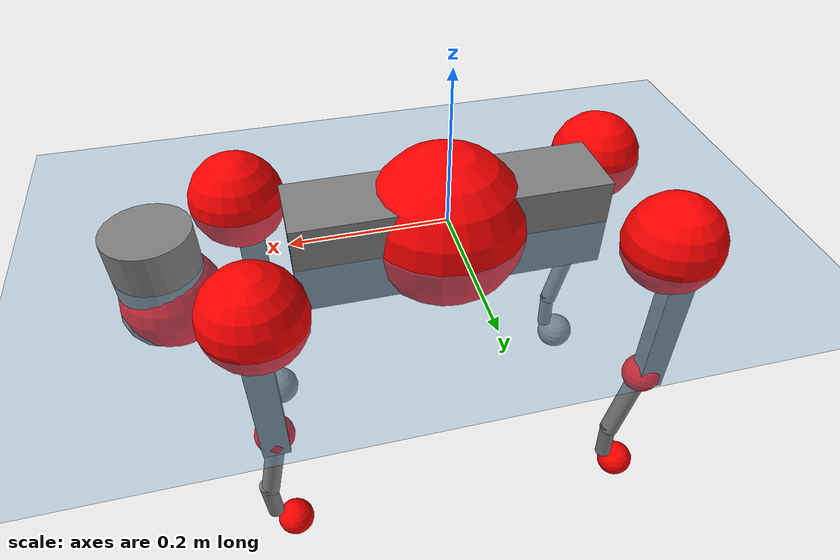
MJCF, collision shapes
<mujoco model="go2">
  <compiler angle="radian" assetdir="assets" balanceinertia="true" inertiafromgeom="false"/>

  <option timestep="0.005" density="1.2" viscosity="2e-05"/>

  <size nkey="1"/>

  <visual>
    <quality shadowsize="8192"/>
    <map shadowclip="0.5"/>
  </visual>

  <default>
    <default class="/">
      <geom contype="0" conaffinity="0" group="1" solref="-1000 -80"/>
      <site size="0.01 0.005 0.005" group="5"/>
      <general forcelimited="true" biastype="affine" gainprm="20" biasprm="0 -20 -0.5"/>
      <default class="go2">
        <joint armature="0.01" damping="0.01" frictionloss="0.2"/>
        <geom condim="1" margin="0.001"/>
        <default class="visual">
          <geom type="mesh" group="2"/>
        </default>
        <default class="collision">
          <geom group="3"/>
          <default class="foot">
            <geom size="0.022 0 0" condim="6" priority="1" friction="0.8 0.02 0.01" solimp="0.015 1 0.022"/>
          </default>
        </default>
        <default class="reward_collision_sphere">
          <geom group="5" rgba="1 0 0 1"/>
        </default>
      </default>
    </default>
  </default>

  <asset>
    <texture type="skybox" colorspace="auto" name="//unnamed_texture_0" builtin="gradient" rgb1="0.95 0.95 0.95" rgb2="0.95 0.95 0.95" width="100" height="600"/>
    <texture type="2d" colorspace="auto" name="texplane" builtin="checker" rgb1="0.345 0.575 0.748" rgb2="0.345 0.575 0.748" markrgb="1 1 1" width="512" height="512"/>
    <material name="MatPlane" class="/" texture="texplane" texuniform="true" texrepeat="2 2" specular="0.9"/>
    <material name="metal" class="/" rgba="0.9 0.95 0.95 1"/>
    <material name="black" class="/" rgba="0 0 0 1"/>
    <material name="white" class="/"/>
    <material name="gray" class="/" rgba="0.671705 0.692426 0.77427 1"/>
    <mesh name="base_0" class="/" file="base_0.obj"/>
    <mesh name="base_1" class="/" file="base_1.obj"/>
    <mesh name="base_2" class="/" file="base_2.obj"/>
    <mesh name="base_3" class="/" file="base_3.obj"/>
    <mesh name="base_4" class="/" file="base_4.obj"/>
    <mesh name="hip_0" class="/" file="hip_0.obj"/>
    <mesh name="hip_1" class="/" file="hip_1.obj"/>
    <mesh name="thigh_0" class="/" file="thigh_0.obj"/>
    <mesh name="thigh_1" class="/" file="thigh_1.obj"/>
    <mesh name="thigh_mirror_0" class="/" file="thigh_mirror_0.obj"/>
    <mesh name="thigh_mirror_1" class="/" file="thigh_mirror_1.obj"/>
    <mesh name="calf_0" class="/" file="calf_0.obj"/>
    <mesh name="calf_1" class="/" file="calf_1.obj"/>
    <mesh name="calf_mirror_0" class="/" file="calf_mirror_0.obj"/>
    <mesh name="calf_mirror_1" class="/" file="calf_mirror_1.obj"/>
    <mesh name="foot" class="/" file="foot.obj"/>
  </asset>

  <worldbody>
    <geom name="floor" class="/" size="100 100 0.125" type="plane" group="0" material="MatPlane"/>
    <light name="toplight_shadow" class="/" pos="0 0 5" dir="0.0990148 0.0990148 -0.990148" type="directional" ambient="0.04 0.04 0.04" diffuse="0.55 0.55 0.55" specular="0.12 0.12 0.12"/>
    <light name="toplight_fill" class="/" pos="0 0 5" dir="0.0990148 0.0990148 -0.990148" type="directional" castshadow="false" ambient="0.04 0.04 0.04" diffuse="0.3 0.3 0.3" specular="0.08 0.08 0.08"/>
    <body name="trunk" childclass="go2" pos="0.00340822 0.00119652 -0.00470032" quat="0.999996 0.00220122 0.000471977 0.00195306">
      <inertial pos="0.0405764 0.0114179 0.000506129" quat="0.000298783 0.709034 0.0110862 0.705087" mass="6.67176" diaginertia="0.309391 0.0701697 0.0211418"/>
      <joint name="//unnamed_joint_0" type="free" armature="0" damping="0" frictionloss="0"/>
      <geom name="//unnamed_geom_1" class="visual" material="black" mesh="base_0"/>
      <geom name="//unnamed_geom_2" class="visual" material="black" mesh="base_1"/>
      <geom name="//unnamed_geom_3" class="visual" material="black" mesh="base_2"/>
      <geom name="//unnamed_geom_4" class="visual" material="white" mesh="base_3"/>
      <geom name="//unnamed_geom_5" class="visual" material="gray" mesh="base_4"/>
      <geom name="trunk_1" class="collision" size="0.19749 0.0490837 0.0598454" type="box"/>
      <geom name="trunk_2" class="collision" size="0.0524959 0.0472463" pos="0.35161 0 0.00977931" type="cylinder"/>
      <geom name="trunk_3" class="collision" size="0.0493462" pos="0.36148 0 -0.0586758"/>
      <geom name="//unnamed_geom_9" class="reward_collision_sphere" size="0.104992"/>
      <geom name="//unnamed_geom_10" class="reward_collision_sphere" size="0.0629951" pos="0.345441 0 -0.0440069"/>
      <site name="imu" pos="-0.0944421 -0.0010729 0.104002" size="0.0104992"/>
      <camera name="track" pos="0 -1.87621 0" quat="0.707107 0.707107 0 0" mode="trackcom"/>
      <camera name="ego_camera" pos="0.38492 0 0.0440069" quat="-0.5 -0.5 0.5 0.5"/>
      <body name="FL_hip" pos="0.248633 0.0541144 0.00999054" quat="1 -0.000229851 5.22092e-05 -0.000600812">
        <inertial pos="-0.00614257 0.0116234 0.000410321" quat="0.495779 0.502734 0.503384 0.498063" mass="0.848786" diaginertia="0.00302401 0.000578943 0.000514075"/>
        <joint name="FL_hip_joint" pos="0 0 0" axis="0.999573 0.0184576 -0.0226587" stiffness="0.0426323" range="-1.05411 0.934807" armature="0.010749" damping="0" frictionloss="0.300393"/>
        <geom name="//unnamed_geom_11" class="visual" material="metal" mesh="hip_0"/>
        <geom name="//unnamed_geom_12" class="visual" material="gray" mesh="hip_1"/>
        <geom name="//unnamed_geom_13" class="collision" size="0.0482963 0.0209984" pos="0 0.0750484 0" quat="0.707107 0.707107 0 0" type="cylinder"/>
        <geom name="//unnamed_geom_14" class="reward_collision_sphere" size="0.0629951" pos="0 0.0656674 0"/>
        <body name="FL_thigh" pos="0.00747304 0.0762162 -0.00668549" quat="0.999982 0.000809223 -0.00410424 0.00427132">
          <inertial pos="-0.0038981 -0.0209138 -0.0391076" quat="0.833086 0.118013 0.0156132 0.540182" mass="1.49427" diaginertia="0.0169396 0.00501342 0.000751327"/>
          <joint name="FL_thigh_joint" pos="0 0 0" axis="0.000760967 0.99989 -0.0148001" range="-1.80154 3.32077" armature="0.0122581" damping="0" frictionloss="0.287547"/>
          <geom name="//unnamed_geom_15" class="visual" material="metal" mesh="thigh_0"/>
          <geom name="//unnamed_geom_16" class="visual" material="gray" mesh="thigh_1"/>
          <geom name="//unnamed_geom_17" class="collision" size="0.111816 0.0128615 0.0178486" pos="0 0 -0.10415" quat="0.707107 0 0.707107 0" type="box"/>
          <body name="FL_calf" pos="-0.000843735 -0.0119227 -0.204325" quat="0.999999 0.000691293 0.00133352 0.000196524">
            <inertial pos="0.0065014 -0.00314713 -0.131971" quat="0.711384 -0.0017589 -0.00154718 0.7028" mass="0.291208" diaginertia="0.00496368 0.00108123 4.71743e-05"/>
            <joint name="FL_calf_joint" pos="0 0 0" axis="0.00420585 0.999989 0.00226051" stiffness="0.055756" range="-2.89124 -0.816143" armature="0.00834345" damping="0.00817772" frictionloss="0.220768"/>
            <geom name="//unnamed_geom_18" class="visual" material="gray" mesh="calf_0"/>
            <geom name="//unnamed_geom_19" class="visual" material="black" mesh="calf_1"/>
            <geom name="FL_calf0" class="collision" size="0.012599 0.0629951" pos="0.00986976 0 -0.0586758" quat="0.994493 0 -0.104807 0" type="cylinder"/>
            <geom name="//unnamed_geom_21" class="collision" size="0.0115491 0.0341224" pos="0.0246744 0 -0.144734" quat="0.999688 0 0.0249974 0" type="cylinder"/>
            <geom name="//unnamed_geom_22" class="visual" pos="0 0 -0.208299" quat="1 0 0 0" material="black" mesh="foot"/>
            <geom name="FL_foot" class="foot" size="0.0246364" pos="-0.00246744 0 -0.208299"/>
            <geom name="//unnamed_geom_24" class="reward_collision_sphere" size="0.026248"/>
            <geom name="//unnamed_geom_25" class="reward_collision_sphere" size="0.026248" pos="-0.00246744 0 -0.208299"/>
            <site name="FL_foot" class="foot" pos="-0.00246744 0 -0.208299" size="0.0104992"/>
          </body>
        </body>
      </body>
      <body name="FR_hip" pos="0.251487 -0.0503661 0.00286765" quat="0.999999 -2.79418e-05 -0.00116807 0.000408301">
        <inertial pos="0.00148033 0.0129651 0.00835971" quat="0.453888 0.519869 0.478568 0.542858" mass="0.769012" diaginertia="0.00278211 0.000356877 0.000469639"/>
        <joint name="FR_hip_joint" pos="0 0 0" axis="0.998644 -0.00884897 -0.0513071" range="-1.08497 1.01041" armature="0.0104412" damping="0.0524085" frictionloss="0.157665"/>
        <geom name="//unnamed_geom_26" class="visual" pos="0 -3.4694e-10 -1.4881e-08" quat="4.63268e-05 1 0 0" material="metal" mesh="hip_0"/>
        <geom name="//unnamed_geom_27" class="visual" pos="0 -5.62431e-10 3.68063e-08" quat="4.63268e-05 1 0 0" material="gray" mesh="hip_1"/>
        <geom name="//unnamed_geom_28" class="collision" size="0.0482963 0.0209984" pos="0 -0.0750484 0" quat="0.707107 0.707107 0 0" type="cylinder"/>
        <geom name="//unnamed_geom_29" class="reward_collision_sphere" size="0.0629951" pos="0 -0.0656674 0"/>
        <body name="FR_thigh" pos="-0.0070956 -0.0825712 0.0109485" quat="0.999985 -0.00357512 -0.00355589 0.00208476">
          <inertial pos="-0.0173082 0.0250116 -0.0245791" quat="0.541835 0.0116078 0.103424 0.834016" mass="1.19806" diaginertia="0.0192873 0.0049592 0.000681082"/>
          <joint name="FR_thigh_joint" pos="0 0 0" axis="0.00560471 -0.999643 -0.0261207" range="-3.58451 1.61955" armature="0.0144894" damping="0" frictionloss="0.151062"/>
          <geom name="//unnamed_geom_30" class="visual" material="metal" mesh="thigh_mirror_0"/>
          <geom name="//unnamed_geom_31" class="visual" material="gray" mesh="thigh_mirror_1"/>
          <geom name="//unnamed_geom_32" class="collision" size="0.111816 0.0128615 0.0178486" pos="0 0 -0.10415" quat="0.707107 0 0.707107 0" type="box"/>
          <body name="FR_calf" pos="0.00761919 -0.00281157 -0.211267" quat="0.999993 -0.000281115 0.00221855 -0.00295759">
            <inertial pos="0.0177096 0.000713981 -0.137583" quat="0.71756 0.00289478 0.0650226 0.693449" mass="0.220793" diaginertia="0.00346314 0.000999288 4.21756e-05"/>
            <joint name="FR_calf_joint" pos="0 0 0" axis="-0.0111884 -0.999701 -0.0217471" stiffness="0.0621724" range="1.09543 2.87801" armature="0.00457112" damping="0" frictionloss="0.146884"/>
            <geom name="//unnamed_geom_33" class="visual" material="gray" mesh="calf_mirror_0"/>
            <geom name="//unnamed_geom_34" class="visual" material="black" mesh="calf_mirror_1"/>
            <geom name="FR_calf0" class="collision" size="0.0136489 0.0629951" pos="0.0123372 0 -0.0586758" quat="0.995004 0 -0.0998334 0" type="cylinder"/>
            <geom name="//unnamed_geom_36" class="collision" size="0.0115491 0.0341224" pos="0.0246744 0 -0.144734" quat="0.999688 0 0.0249974 0" type="cylinder"/>
            <geom name="//unnamed_geom_37" class="visual" pos="0 0 -0.208299" quat="1 0 0 0" material="black" mesh="foot"/>
            <geom name="FR_foot" class="foot" size="0.0318202" pos="-0.00246744 0 -0.208299"/>
            <geom name="//unnamed_geom_39" class="reward_collision_sphere" size="0.026248"/>
            <geom name="//unnamed_geom_40" class="reward_collision_sphere" size="0.026248" pos="-0.00246744 0 -0.208299"/>
            <site name="FR_foot" class="foot" pos="-0.00246744 0 -0.208299" size="0.0104992"/>
          </body>
        </body>
      </body>
      <body name="RL_hip" pos="-0.250276 0.0525283 0.0115072" quat="1 2.57793e-05 -0.000113425 0.00026831">
        <inertial pos="0.00583625 -0.00702507 0.0132469" quat="0.469545 0.535205 0.495356 0.4977" mass="0.653006" diaginertia="0.00172505 0.000375667 0.000391424"/>
        <joint name="RL_hip_joint" pos="0 0 0" axis="-0.998657 -0.046977 0.0218326" stiffness="0.0283695" range="-1.06811 0.952057" armature="0.0104027" damping="0.0683735" frictionloss="0.203996"/>
        <geom name="//unnamed_geom_41" class="visual" pos="-2.22833e-09 0 -4.36803e-07" quat="4.63268e-05 0 1 0" material="metal" mesh="hip_0"/>
        <geom name="//unnamed_geom_42" class="visual" pos="-3.61238e-09 0 -3.87382e-07" quat="4.63268e-05 0 1 0" material="gray" mesh="hip_1"/>
        <geom name="//unnamed_geom_43" class="collision" size="0.0482963 0.0209984" pos="0 0.0750484 0" quat="0.707107 0.707107 0 0" type="cylinder"/>
        <geom name="//unnamed_geom_44" class="reward_collision_sphere" size="0.0629951" pos="0 0.0656674 0"/>
        <body name="RL_thigh" pos="-0.00121643 0.0951686 -0.0060366" quat="0.999997 0.00178927 0.00137624 0.0010981">
          <inertial pos="0.00989727 -0.0254903 -0.0186529" quat="0.828223 0.0833456 -0.0152468 0.553957" mass="1.58538" diaginertia="0.0222373 0.0041917 0.000820262"/>
          <joint name="RL_thigh_joint" pos="0 0 0" axis="0.0139734 0.999899 0.0026878" range="-0.389337 4.70793" armature="0.00910839" damping="0.0566282" frictionloss="0.199965"/>
          <geom name="//unnamed_geom_45" class="visual" material="metal" mesh="thigh_0"/>
          <geom name="//unnamed_geom_46" class="visual" material="gray" mesh="thigh_1"/>
          <geom name="//unnamed_geom_47" class="collision" size="0.111816 0.0128615 0.0178486" pos="0 0 -0.10415" quat="0.707107 0 0.707107 0" type="box"/>
          <body name="RL_calf" pos="0.00535028 -0.00520583 -0.202997" quat="1 -0.000146434 -0.000628134 0.000315576">
            <inertial pos="0.00103351 -0.0122289 -0.13392" quat="0.68292 0.0138181 -0.00638764 0.730334" mass="0.22557" diaginertia="0.00385607 0.000744918 3.68105e-05"/>
            <joint name="RL_calf_joint" pos="0 0 0" axis="-8.93033e-05 1 -3.32643e-06" range="-2.94817 -0.659534" armature="0.00394845" damping="0" frictionloss="0.322867"/>
            <geom name="//unnamed_geom_48" class="visual" material="gray" mesh="calf_0"/>
            <geom name="//unnamed_geom_49" class="visual" material="black" mesh="calf_1"/>
            <geom name="RL_calf0" class="collision" size="0.0136489 0.0629951" pos="0.0123372 0 -0.0586758" quat="0.995004 0 -0.0998334 0" type="cylinder"/>
            <geom name="//unnamed_geom_51" class="collision" size="0.0115491 0.0341224" pos="0.0246744 0 -0.144734" quat="0.999688 0 0.0249974 0" type="cylinder"/>
            <geom name="//unnamed_geom_52" class="visual" pos="0 0 -0.208299" quat="1 0 0 0" material="black" mesh="foot"/>
            <geom name="RL_foot" class="foot" size="0.0185589" pos="-0.00246744 0 -0.208299"/>
            <geom name="//unnamed_geom_54" class="reward_collision_sphere" size="0.026248"/>
            <geom name="//unnamed_geom_55" class="reward_collision_sphere" size="0.026248" pos="-0.00246744 0 -0.208299"/>
            <site name="RL_foot" class="foot" pos="-0.00246744 0 -0.208299" size="0.0104992"/>
          </body>
        </body>
      </body>
      <body name="RR_hip" pos="-0.253158 -0.0436518 -0.00557282" quat="1 2.35652e-05 0.000104153 6.61272e-05">
        <inertial pos="0.014385 -0.00887404 0.0130611" quat="0.520194 0.431573 0.523 0.519244" mass="0.799478" diaginertia="0.00301677 0.000516393 0.000499188"/>
        <joint name="RR_hip_joint" pos="0 0 0" axis="-0.998093 -0.058513 0.0196798" range="-0.810187 0.908223" armature="0.01352" damping="0.0440274" frictionloss="0.216832"/>
        <geom name="//unnamed_geom_56" class="visual" pos="2.21809e-09 -3.4694e-10 -4.21922e-07" quat="2.14617e-09 4.63268e-05 4.63268e-05 -1" material="metal" mesh="hip_0"/>
        <geom name="//unnamed_geom_57" class="visual" pos="3.6377e-09 -5.62431e-10 -4.24189e-07" quat="2.14617e-09 4.63268e-05 4.63268e-05 -1" material="gray" mesh="hip_1"/>
        <geom name="//unnamed_geom_58" class="collision" size="0.0482963 0.0209984" pos="0 -0.0750484 0" quat="0.707107 0.707107 0 0" type="cylinder"/>
        <geom name="//unnamed_geom_59" class="reward_collision_sphere" size="0.0629951" pos="0 -0.0656674 0"/>
        <body name="RR_thigh" pos="-0.0134318 -0.0944757 0.0118111" quat="0.999985 0.0017423 -0.00509417 0.00101227">
          <inertial pos="-0.00418054 0.0133066 -0.0350691" quat="0.55282 -0.0256252 0.0855435 0.828502" mass="1.64678" diaginertia="0.0210269 0.00470489 0.000880461"/>
          <joint name="RR_thigh_joint" pos="0 0 0" axis="0.00589054 -0.999935 0.00971425" stiffness="0.00509599" range="-4.69225 0.606445" armature="0.0116155" damping="0" frictionloss="0.196292"/>
          <geom name="//unnamed_geom_60" class="visual" material="metal" mesh="thigh_mirror_0"/>
          <geom name="//unnamed_geom_61" class="visual" material="gray" mesh="thigh_mirror_1"/>
          <geom name="//unnamed_geom_62" class="collision" size="0.111816 0.0128615 0.0178486" pos="0 0 -0.10415" quat="0.707107 0 0.707107 0" type="box"/>
          <body name="RR_calf" pos="-0.00305458 -0.0105078 -0.206515" quat="0.99998 -0.00314908 -0.00535859 -0.00103801">
            <inertial pos="-0.00276512 0.00652911 -0.141983" quat="0.68815 -0.0438859 -0.0206626 0.723945" mass="0.26623" diaginertia="0.00455872 0.00105411 5.21311e-05"/>
            <joint name="RR_calf_joint" pos="0 0 0" axis="-0.0263707 -0.999472 0.0189937" range="0.874137 2.48125" armature="0.0112481" damping="0" frictionloss="0.14772"/>
            <geom name="//unnamed_geom_63" class="visual" material="gray" mesh="calf_mirror_0"/>
            <geom name="//unnamed_geom_64" class="visual" material="black" mesh="calf_mirror_1"/>
            <geom name="RR_calf0" class="collision" size="0.0136489 0.0629951" pos="0.0123372 0 -0.0586758" quat="0.995004 0 -0.0998334 0" type="cylinder"/>
            <geom name="//unnamed_geom_66" class="collision" size="0.0115491 0.0341224" pos="0.0246744 0 -0.144734" quat="0.999688 0 0.0249974 0" type="cylinder"/>
            <geom name="//unnamed_geom_67" class="visual" pos="0 0 -0.208299" quat="1 0 0 0" material="black" mesh="foot"/>
            <geom name="RR_foot" class="foot" size="0.0307758" pos="-0.00246744 0 -0.208299"/>
            <geom name="//unnamed_geom_69" class="reward_collision_sphere" size="0.026248"/>
            <geom name="//unnamed_geom_70" class="reward_collision_sphere" size="0.026248" pos="-0.00246744 0 -0.208299"/>
            <site name="RR_foot" class="foot" pos="-0.00246744 0 -0.208299" size="0.0104992"/>
          </body>
        </body>
      </body>
    </body>
  </worldbody>

  <contact>
    <pair class="/" geom1="floor" geom2="FL_foot" name="//unnamed_contact_0"/>
    <pair class="/" geom1="floor" geom2="FR_foot" name="//unnamed_contact_1"/>
    <pair class="/" geom1="floor" geom2="RL_foot" name="//unnamed_contact_2"/>
    <pair class="/" geom1="floor" geom2="RR_foot" name="//unnamed_contact_3"/>
  </contact>

  <actuator>
    <general name="FL_hip" class="/" joint="FL_hip_joint" forcerange="-34.2658 34.2658" gainprm="24.8995" biasprm="0 -24.8995 -0.621012"/>
    <general name="FL_thigh" class="/" joint="FL_thigh_joint" forcerange="-37.1433 37.1433" gainprm="24.8995" biasprm="0 -24.8995 -0.621012"/>
    <general name="FL_calf" class="/" joint="FL_calf_joint" forcerange="-55.8422 55.8422" gainprm="24.8995" biasprm="0 -24.8995 -0.621012"/>
    <general name="FR_hip" class="/" joint="FR_hip_joint" forcerange="-25.6036 25.6036" gainprm="24.8995" biasprm="0 -24.8995 -0.621012"/>
    <general name="FR_thigh" class="/" joint="FR_thigh_joint" forcerange="-16.402 16.402" gainprm="24.8995" biasprm="0 -24.8995 -0.621012"/>
    <general name="FR_calf" class="/" joint="FR_calf_joint" forcerange="-52.0598 52.0598" gainprm="24.8995" biasprm="0 -24.8995 -0.621012"/>
    <general name="RL_hip" class="/" joint="RL_hip_joint" forcerange="-23.9029 23.9029" gainprm="24.8995" biasprm="0 -24.8995 -0.621012"/>
    <general name="RL_thigh" class="/" joint="RL_thigh_joint" forcerange="-33.7468 33.7468" gainprm="24.8995" biasprm="0 -24.8995 -0.621012"/>
    <general name="RL_calf" class="/" joint="RL_calf_joint" forcerange="-39.0242 39.0242" gainprm="24.8995" biasprm="0 -24.8995 -0.621012"/>
    <general name="RR_hip" class="/" joint="RR_hip_joint" forcerange="-26.2626 26.2626" gainprm="24.8995" biasprm="0 -24.8995 -0.621012"/>
    <general name="RR_thigh" class="/" joint="RR_thigh_joint" forcerange="-14.3368 14.3368" gainprm="24.8995" biasprm="0 -24.8995 -0.621012"/>
    <general name="RR_calf" class="/" joint="RR_calf_joint" forcerange="-42.8156 42.8156" gainprm="24.8995" biasprm="0 -24.8995 -0.621012"/>
  </actuator>

  <sensor>
    <gyro site="imu" name="imu_angular_velocity"/>
    <velocimeter site="imu" name="imu_linear_velocity"/>
    <framelinvel objtype="site" objname="FL_foot" name="FL_foot_global_linear_velocity"/>
    <framelinvel objtype="site" objname="FR_foot" name="FR_foot_global_linear_velocity"/>
    <framelinvel objtype="site" objname="RL_foot" name="RL_foot_global_linear_velocity"/>
    <framelinvel objtype="site" objname="RR_foot" name="RR_foot_global_linear_velocity"/>
  </sensor>

  <keyframe>
    <key name="home" qpos="0 0 0.325 1 0 0 0 0.1 0.8 -1.5 -0.1 -0.8 1.5 -0.1 0.8 -1.5 0.1 -0.8 1.5"/>
  </keyframe>
</mujoco>
